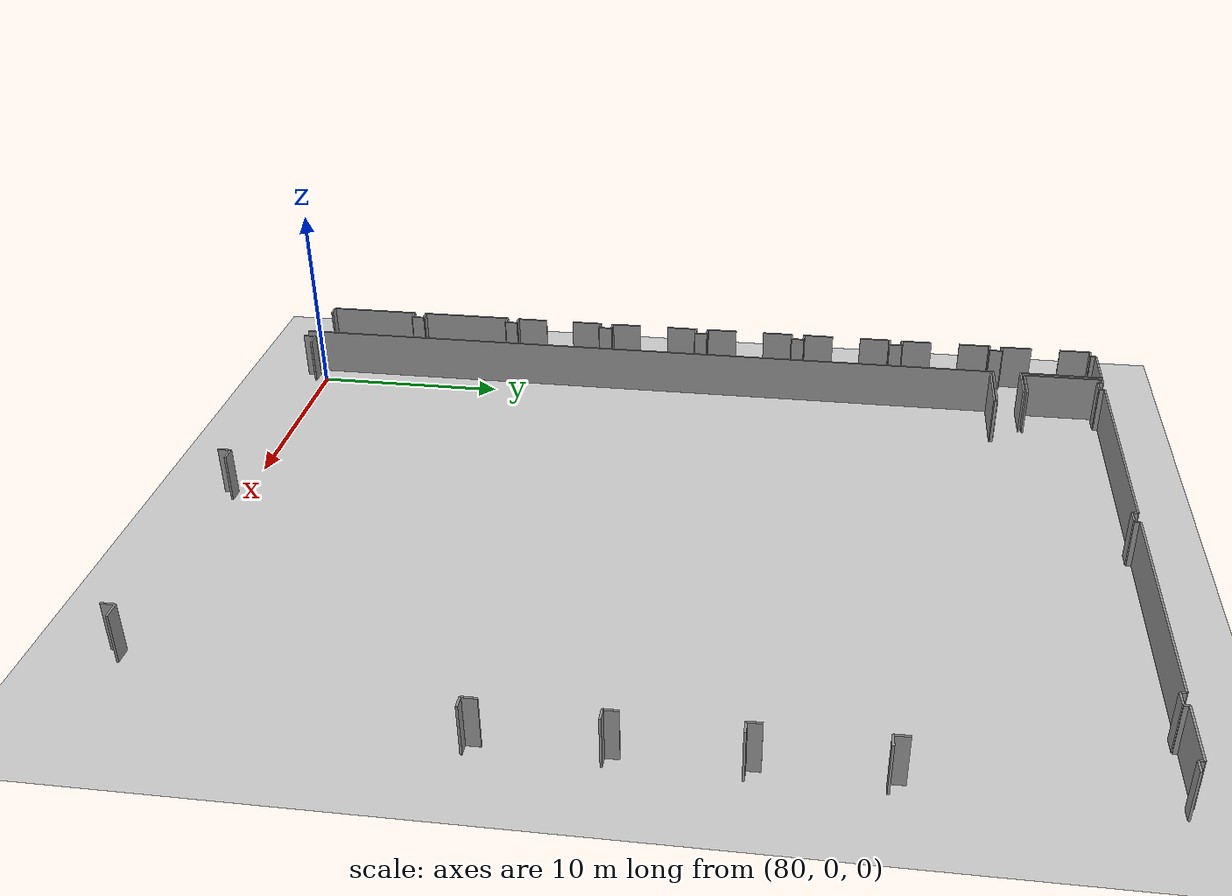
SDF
<sdf version="1.6">
 <world name="default">
  <model name="ground_plane">
   <static>1</static>
   <link name="link">
    <collision name="collision">
     <geometry><plane><normal>0 0 1</normal><size>100 100</size></plane></geometry>
     <surface><friction><ode><mu>100</mu><mu2>50</mu2></ode></friction></surface>
    </collision>
    <visual name="visual">
     <cast_shadows>0</cast_shadows>
     <geometry><plane><normal>0 0 1</normal><size>100 100</size></plane></geometry>
     <material>
      <script><uri>file://media/materials/scripts/gazebo.material</uri><name>Gazebo/Grey</name></script>
     </material>
    </visual>
   </link>
  </model>
  <model name="50015848">
   <static>1</static>
   <link name="Wall_897">
    <collision name="Wall_897_Collision">
     <geometry><box><size>0.610470094958 0.1 2.5</size></box></geometry>
     <pose>0.305235047479 0 1.25 0 0 0</pose>
    </collision>
    <visual name="Wall_897_Visual">
     <pose>0.305235047479 0 1.25 0 0 0</pose>
     <geometry><box><size>0.610470094958 0.1 2.5</size></box></geometry>
     <material>
      <script><uri>file://media/materials/scripts/gazebo.material</uri><name>Gazebo/Grey</name></script>
      <ambient>1 1 1 1</ambient>
     </material>
    </visual>
    <pose>208.205316875 -44.3907668301 0 0 0 3.14159265359</pose>
   </link>
   <link name="Wall_898">
    <collision name="Wall_898_Collision">
     <geometry><box><size>4.88376075966 0.1 2.5</size></box></geometry>
     <pose>2.44188037983 0 1.25 0 0 0</pose>
    </collision>
    <visual name="Wall_898_Visual">
     <pose>2.44188037983 0 1.25 0 0 0</pose>
     <geometry><box><size>4.88376075966 0.1 2.5</size></box></geometry>
     <material>
      <script><uri>file://media/materials/scripts/gazebo.material</uri><name>Gazebo/Grey</name></script>
      <ambient>1 1 1 1</ambient>
     </material>
    </visual>
    <pose>207.59484678 -44.3907668301 0 0 0 1.57079632679</pose>
   </link>
   <link name="Wall_899">
    <collision name="Wall_899_Collision">
     <geometry><box><size>0.55312751746 0.1 2.5</size></box></geometry>
     <pose>0.27656375873 0 1.25 0 0 0</pose>
    </collision>
    <visual name="Wall_899_Visual">
     <pose>0.27656375873 0 1.25 0 0 0</pose>
     <geometry><box><size>0.55312751746 0.1 2.5</size></box></geometry>
     <material>
      <script><uri>file://media/materials/scripts/gazebo.material</uri><name>Gazebo/Grey</name></script>
      <ambient>1 1 1 1</ambient>
     </material>
    </visual>
    <pose>207.59484678 -39.5070060704 0 0 0 0.0</pose>
   </link>
   <link name="Wall_900">
    <collision name="Wall_900_Collision">
     <geometry><box><size>0.686588560663 0.1 2.5</size></box></geometry>
     <pose>0.343294280332 0 1.25 0 0 0</pose>
    </collision>
    <visual name="Wall_900_Visual">
     <pose>0.343294280332 0 1.25 0 0 0</pose>
     <geometry><box><size>0.686588560663 0.1 2.5</size></box></geometry>
     <material>
      <script><uri>file://media/materials/scripts/gazebo.material</uri><name>Gazebo/Grey</name></script>
      <ambient>1 1 1 1</ambient>
     </material>
    </visual>
    <pose>208.147974297 -39.5070060704 0 0 0 1.57079632679</pose>
   </link>
   <link name="Wall_901">
    <collision name="Wall_901_Collision">
     <geometry><box><size>0.55312751746 0.1 2.5</size></box></geometry>
     <pose>0.27656375873 0 1.25 0 0 0</pose>
    </collision>
    <visual name="Wall_901_Visual">
     <pose>0.27656375873 0 1.25 0 0 0</pose>
     <geometry><box><size>0.55312751746 0.1 2.5</size></box></geometry>
     <material>
      <script><uri>file://media/materials/scripts/gazebo.material</uri><name>Gazebo/Grey</name></script>
      <ambient>1 1 1 1</ambient>
     </material>
    </visual>
    <pose>208.147974297 -38.8204175098 0 0 0 3.14159265359</pose>
   </link>
   <link name="Wall_902">
    <collision name="Wall_902_Collision">
     <geometry><box><size>4.94922264017 0.1 2.5</size></box></geometry>
     <pose>2.47461132008 0 1.25 0 0 0</pose>
    </collision>
    <visual name="Wall_902_Visual">
     <pose>2.47461132008 0 1.25 0 0 0</pose>
     <geometry><box><size>4.94922264017 0.1 2.5</size></box></geometry>
     <material>
      <script><uri>file://media/materials/scripts/gazebo.material</uri><name>Gazebo/Grey</name></script>
      <ambient>1 1 1 1</ambient>
     </material>
    </visual>
    <pose>207.59484678 -38.8204175098 0 0 0 1.57079632679</pose>
   </link>
   <link name="Wall_903">
    <collision name="Wall_903_Collision">
     <geometry><box><size>0.537903824319 0.1 2.5</size></box></geometry>
     <pose>0.268951912159 0 1.25 0 0 0</pose>
    </collision>
    <visual name="Wall_903_Visual">
     <pose>0.268951912159 0 1.25 0 0 0</pose>
     <geometry><box><size>0.537903824319 0.1 2.5</size></box></geometry>
     <material>
      <script><uri>file://media/materials/scripts/gazebo.material</uri><name>Gazebo/Grey</name></script>
      <ambient>1 1 1 1</ambient>
     </material>
    </visual>
    <pose>207.59484678 -33.8711948696 0 0 0 0.0</pose>
   </link>
   <link name="Wall_904">
    <collision name="Wall_904_Collision">
     <geometry><box><size>0.669081313551 0.1 2.5</size></box></geometry>
     <pose>0.334540656775 0 1.25 0 0 0</pose>
    </collision>
    <visual name="Wall_904_Visual">
     <pose>0.334540656775 0 1.25 0 0 0</pose>
     <geometry><box><size>0.669081313551 0.1 2.5</size></box></geometry>
     <material>
      <script><uri>file://media/materials/scripts/gazebo.material</uri><name>Gazebo/Grey</name></script>
      <ambient>1 1 1 1</ambient>
     </material>
    </visual>
    <pose>208.132750604 -33.8711948696 0 0 0 1.57079632679</pose>
   </link>
   <link name="Wall_905">
    <collision name="Wall_905_Collision">
     <geometry><box><size>0.515575741045 0.1 2.5</size></box></geometry>
     <pose>0.257787870522 0 1.25 0 0 0</pose>
    </collision>
    <visual name="Wall_905_Visual">
     <pose>0.257787870522 0 1.25 0 0 0</pose>
     <geometry><box><size>0.515575741045 0.1 2.5</size></box></geometry>
     <material>
      <script><uri>file://media/materials/scripts/gazebo.material</uri><name>Gazebo/Grey</name></script>
      <ambient>1 1 1 1</ambient>
     </material>
    </visual>
    <pose>208.132750604 -33.2021135561 0 0 0 3.14159265359</pose>
   </link>
   <link name="Wall_906">
    <collision name="Wall_906_Collision">
     <geometry><box><size>1.67841216881 0.1 2.5</size></box></geometry>
     <pose>0.839206084403 0 1.25 0 0 0</pose>
    </collision>
    <visual name="Wall_906_Visual">
     <pose>0.839206084403 0 1.25 0 0 0</pose>
     <geometry><box><size>1.67841216881 0.1 2.5</size></box></geometry>
     <material>
      <script><uri>file://media/materials/scripts/gazebo.material</uri><name>Gazebo/Grey</name></script>
      <ambient>1 1 1 1</ambient>
     </material>
    </visual>
    <pose>207.617174863 -33.2021135561 0 0 0 1.57079632679</pose>
   </link>
   <link name="Wall_907">
    <collision name="Wall_907_Collision">
     <geometry><box><size>1.66851676826 0.1 2.5</size></box></geometry>
     <pose>0.834258384132 0 1.25 0 0 0</pose>
    </collision>
    <visual name="Wall_907_Visual">
     <pose>0.834258384132 0 1.25 0 0 0</pose>
     <geometry><box><size>1.66851676826 0.1 2.5</size></box></geometry>
     <material>
      <script><uri>file://media/materials/scripts/gazebo.material</uri><name>Gazebo/Grey</name></script>
      <ambient>1 1 1 1</ambient>
     </material>
    </visual>
    <pose>207.617174863 -29.965302666 0 0 0 1.57079632679</pose>
   </link>
   <link name="Wall_908">
    <collision name="Wall_908_Collision">
     <geometry><box><size>0.515575741045 0.1 2.5</size></box></geometry>
     <pose>0.257787870522 0 1.25 0 0 0</pose>
    </collision>
    <visual name="Wall_908_Visual">
     <pose>0.257787870522 0 1.25 0 0 0</pose>
     <geometry><box><size>0.515575741045 0.1 2.5</size></box></geometry>
     <material>
      <script><uri>file://media/materials/scripts/gazebo.material</uri><name>Gazebo/Grey</name></script>
      <ambient>1 1 1 1</ambient>
     </material>
    </visual>
    <pose>207.617174863 -28.2967858978 0 0 0 0.0</pose>
   </link>
   <link name="Wall_909">
    <collision name="Wall_909_Collision">
     <geometry><box><size>0.710946469689 0.1 2.5</size></box></geometry>
     <pose>0.355473234844 0 1.25 0 0 0</pose>
    </collision>
    <visual name="Wall_909_Visual">
     <pose>0.355473234844 0 1.25 0 0 0</pose>
     <geometry><box><size>0.710946469689 0.1 2.5</size></box></geometry>
     <material>
      <script><uri>file://media/materials/scripts/gazebo.material</uri><name>Gazebo/Grey</name></script>
      <ambient>1 1 1 1</ambient>
     </material>
    </visual>
    <pose>208.132750604 -28.2967858978 0 0 0 1.57079632679</pose>
   </link>
   <link name="Wall_910">
    <collision name="Wall_910_Collision">
     <geometry><box><size>0.515575741045 0.1 2.5</size></box></geometry>
     <pose>0.257787870522 0 1.25 0 0 0</pose>
    </collision>
    <visual name="Wall_910_Visual">
     <pose>0.257787870522 0 1.25 0 0 0</pose>
     <geometry><box><size>0.515575741045 0.1 2.5</size></box></geometry>
     <material>
      <script><uri>file://media/materials/scripts/gazebo.material</uri><name>Gazebo/Grey</name></script>
      <ambient>1 1 1 1</ambient>
     </material>
    </visual>
    <pose>208.132750604 -27.5858394281 0 0 0 3.14159265359</pose>
   </link>
   <link name="Wall_911">
    <collision name="Wall_911_Collision">
     <geometry><box><size>1.63451718692 0.1 2.5</size></box></geometry>
     <pose>0.817258593458 0 1.25 0 0 0</pose>
    </collision>
    <visual name="Wall_911_Visual">
     <pose>0.817258593458 0 1.25 0 0 0</pose>
     <geometry><box><size>1.63451718692 0.1 2.5</size></box></geometry>
     <material>
      <script><uri>file://media/materials/scripts/gazebo.material</uri><name>Gazebo/Grey</name></script>
      <ambient>1 1 1 1</ambient>
     </material>
    </visual>
    <pose>207.617174863 -27.5858394281 0 0 0 1.57079632679</pose>
   </link>
   <link name="Wall_912">
    <collision name="Wall_912_Collision">
     <geometry><box><size>1.69744178523 0.1 2.5</size></box></geometry>
     <pose>0.848720892616 0 1.25 0 0 0</pose>
    </collision>
    <visual name="Wall_912_Visual">
     <pose>0.848720892616 0 1.25 0 0 0</pose>
     <geometry><box><size>1.69744178523 0.1 2.5</size></box></geometry>
     <material>
      <script><uri>file://media/materials/scripts/gazebo.material</uri><name>Gazebo/Grey</name></script>
      <ambient>1 1 1 1</ambient>
     </material>
    </visual>
    <pose>207.617174863 -24.3655208723 0 0 0 1.57079632679</pose>
   </link>
   <link name="Wall_913">
    <collision name="Wall_913_Collision">
     <geometry><box><size>0.542217204042 0.1 2.5</size></box></geometry>
     <pose>0.271108602021 0 1.25 0 0 0</pose>
    </collision>
    <visual name="Wall_913_Visual">
     <pose>0.271108602021 0 1.25 0 0 0</pose>
     <geometry><box><size>0.542217204042 0.1 2.5</size></box></geometry>
     <material>
      <script><uri>file://media/materials/scripts/gazebo.material</uri><name>Gazebo/Grey</name></script>
      <ambient>1 1 1 1</ambient>
     </material>
    </visual>
    <pose>207.617174863 -22.6680790871 0 0 0 0.0</pose>
   </link>
   <link name="Wall_914">
    <collision name="Wall_914_Collision">
     <geometry><box><size>0.667305216018 0.1 2.5</size></box></geometry>
     <pose>0.333652608009 0 1.25 0 0 0</pose>
    </collision>
    <visual name="Wall_914_Visual">
     <pose>0.333652608009 0 1.25 0 0 0</pose>
     <geometry><box><size>0.667305216018 0.1 2.5</size></box></geometry>
     <material>
      <script><uri>file://media/materials/scripts/gazebo.material</uri><name>Gazebo/Grey</name></script>
      <ambient>1 1 1 1</ambient>
     </material>
    </visual>
    <pose>208.159392067 -22.6680790871 0 0 0 1.57079632679</pose>
   </link>
   <link name="Wall_915">
    <collision name="Wall_915_Collision">
     <geometry><box><size>0.551097691708 0.1 2.5</size></box></geometry>
     <pose>0.275548845854 0 1.25 0 0 0</pose>
    </collision>
    <visual name="Wall_915_Visual">
     <pose>0.275548845854 0 1.25 0 0 0</pose>
     <geometry><box><size>0.551097691708 0.1 2.5</size></box></geometry>
     <material>
      <script><uri>file://media/materials/scripts/gazebo.material</uri><name>Gazebo/Grey</name></script>
      <ambient>1 1 1 1</ambient>
     </material>
    </visual>
    <pose>208.159392067 -22.0007738711 0 0 0 3.14159265359</pose>
   </link>
   <link name="Wall_916">
    <collision name="Wall_916_Collision">
     <geometry><box><size>1.66826304004 0.1 2.5</size></box></geometry>
     <pose>0.834131520022 0 1.25 0 0 0</pose>
    </collision>
    <visual name="Wall_916_Visual">
     <pose>0.834131520022 0 1.25 0 0 0</pose>
     <geometry><box><size>1.66826304004 0.1 2.5</size></box></geometry>
     <material>
      <script><uri>file://media/materials/scripts/gazebo.material</uri><name>Gazebo/Grey</name></script>
      <ambient>1 1 1 1</ambient>
     </material>
    </visual>
    <pose>207.608294375 -22.0007738711 0 0 0 1.57079632679</pose>
   </link>
   <link name="Wall_917">
    <collision name="Wall_917_Collision">
     <geometry><box><size>1.66521830142 0.1 2.5</size></box></geometry>
     <pose>0.832609150708 0 1.25 0 0 0</pose>
    </collision>
    <visual name="Wall_917_Visual">
     <pose>0.832609150708 0 1.25 0 0 0</pose>
     <geometry><box><size>1.66521830142 0.1 2.5</size></box></geometry>
     <material>
      <script><uri>file://media/materials/scripts/gazebo.material</uri><name>Gazebo/Grey</name></script>
      <ambient>1 1 1 1</ambient>
     </material>
    </visual>
    <pose>207.608294375 -18.7538138523 0 0 0 1.57079632679</pose>
   </link>
   <link name="Wall_918">
    <collision name="Wall_918_Collision">
     <geometry><box><size>0.548052953079 0.1 2.5</size></box></geometry>
     <pose>0.27402647654 0 1.25 0 0 0</pose>
    </collision>
    <visual name="Wall_918_Visual">
     <pose>0.27402647654 0 1.25 0 0 0</pose>
     <geometry><box><size>0.548052953079 0.1 2.5</size></box></geometry>
     <material>
      <script><uri>file://media/materials/scripts/gazebo.material</uri><name>Gazebo/Grey</name></script>
      <ambient>1 1 1 1</ambient>
     </material>
    </visual>
    <pose>207.608294375 -17.0885955509 0 0 0 0.0</pose>
   </link>
   <link name="Wall_919">
    <collision name="Wall_919_Collision">
     <geometry><box><size>0.681260268064 0.1 2.5</size></box></geometry>
     <pose>0.340630134032 0 1.25 0 0 0</pose>
    </collision>
    <visual name="Wall_919_Visual">
     <pose>0.340630134032 0 1.25 0 0 0</pose>
     <geometry><box><size>0.681260268064 0.1 2.5</size></box></geometry>
     <material>
      <script><uri>file://media/materials/scripts/gazebo.material</uri><name>Gazebo/Grey</name></script>
      <ambient>1 1 1 1</ambient>
     </material>
    </visual>
    <pose>208.156347329 -17.0885955509 0 0 0 1.57079632679</pose>
   </link>
   <link name="Wall_920">
    <collision name="Wall_920_Collision">
     <geometry><box><size>0.542470932261 0.1 2.5</size></box></geometry>
     <pose>0.27123546613 0 1.25 0 0 0</pose>
    </collision>
    <visual name="Wall_920_Visual">
     <pose>0.27123546613 0 1.25 0 0 0</pose>
     <geometry><box><size>0.542470932261 0.1 2.5</size></box></geometry>
     <material>
      <script><uri>file://media/materials/scripts/gazebo.material</uri><name>Gazebo/Grey</name></script>
      <ambient>1 1 1 1</ambient>
     </material>
    </visual>
    <pose>208.156347329 -16.4073352828 0 0 0 3.14159265359</pose>
   </link>
   <link name="Wall_921">
    <collision name="Wall_921_Collision">
     <geometry><box><size>1.65253189047 0.1 2.5</size></box></geometry>
     <pose>0.826265945233 0 1.25 0 0 0</pose>
    </collision>
    <visual name="Wall_921_Visual">
     <pose>0.826265945233 0 1.25 0 0 0</pose>
     <geometry><box><size>1.65253189047 0.1 2.5</size></box></geometry>
     <material>
      <script><uri>file://media/materials/scripts/gazebo.material</uri><name>Gazebo/Grey</name></script>
      <ambient>1 1 1 1</ambient>
     </material>
    </visual>
    <pose>207.613876396 -16.4073352828 0 0 0 1.57079632679</pose>
   </link>
   <link name="Wall_922">
    <collision name="Wall_922_Collision">
     <geometry><box><size>1.67765098415 0.1 2.5</size></box></geometry>
     <pose>0.838825492074 0 1.25 0 0 0</pose>
    </collision>
    <visual name="Wall_922_Visual">
     <pose>0.838825492074 0 1.25 0 0 0</pose>
     <geometry><box><size>1.67765098415 0.1 2.5</size></box></geometry>
     <material>
      <script><uri>file://media/materials/scripts/gazebo.material</uri><name>Gazebo/Grey</name></script>
      <ambient>1 1 1 1</ambient>
     </material>
    </visual>
    <pose>207.613876396 -13.1905689221 0 0 0 1.57079632679</pose>
   </link>
   <link name="Wall_923">
    <collision name="Wall_923_Collision">
     <geometry><box><size>0.542470932261 0.1 2.5</size></box></geometry>
     <pose>0.27123546613 0 1.25 0 0 0</pose>
    </collision>
    <visual name="Wall_923_Visual">
     <pose>0.27123546613 0 1.25 0 0 0</pose>
     <geometry><box><size>0.542470932261 0.1 2.5</size></box></geometry>
     <material>
      <script><uri>file://media/materials/scripts/gazebo.material</uri><name>Gazebo/Grey</name></script>
      <ambient>1 1 1 1</ambient>
     </material>
    </visual>
    <pose>207.613876396 -11.512917938 0 0 0 0.0</pose>
   </link>
   <link name="Wall_924">
    <collision name="Wall_924_Collision">
     <geometry><box><size>0.693692950796 0.1 2.5</size></box></geometry>
     <pose>0.346846475398 0 1.25 0 0 0</pose>
    </collision>
    <visual name="Wall_924_Visual">
     <pose>0.346846475398 0 1.25 0 0 0</pose>
     <geometry><box><size>0.693692950796 0.1 2.5</size></box></geometry>
     <material>
      <script><uri>file://media/materials/scripts/gazebo.material</uri><name>Gazebo/Grey</name></script>
      <ambient>1 1 1 1</ambient>
     </material>
    </visual>
    <pose>208.156347329 -11.512917938 0 0 0 1.57079632679</pose>
   </link>
   <link name="Wall_925">
    <collision name="Wall_925_Collision">
     <geometry><box><size>0.517351838578 0.1 2.5</size></box></geometry>
     <pose>0.258675919289 0 1.25 0 0 0</pose>
    </collision>
    <visual name="Wall_925_Visual">
     <pose>0.258675919289 0 1.25 0 0 0</pose>
     <geometry><box><size>0.517351838578 0.1 2.5</size></box></geometry>
     <material>
      <script><uri>file://media/materials/scripts/gazebo.material</uri><name>Gazebo/Grey</name></script>
      <ambient>1 1 1 1</ambient>
     </material>
    </visual>
    <pose>208.156347329 -10.8192249872 0 0 0 3.14159265359</pose>
   </link>
   <link name="Wall_926">
    <collision name="Wall_926_Collision">
     <geometry><box><size>1.67790471237 0.1 2.5</size></box></geometry>
     <pose>0.838952356184 0 1.25 0 0 0</pose>
    </collision>
    <visual name="Wall_926_Visual">
     <pose>0.838952356184 0 1.25 0 0 0</pose>
     <geometry><box><size>1.67790471237 0.1 2.5</size></box></geometry>
     <material>
      <script><uri>file://media/materials/scripts/gazebo.material</uri><name>Gazebo/Grey</name></script>
      <ambient>1 1 1 1</ambient>
     </material>
    </visual>
    <pose>207.63899549 -10.8192249872 0 0 0 1.57079632679</pose>
   </link>
   <link name="Wall_927">
    <collision name="Wall_927_Collision">
     <geometry><box><size>1.69744178523 0.1 2.5</size></box></geometry>
     <pose>0.848720892616 0 1.25 0 0 0</pose>
    </collision>
    <visual name="Wall_927_Visual">
     <pose>0.848720892616 0 1.25 0 0 0</pose>
     <geometry><box><size>1.69744178523 0.1 2.5</size></box></geometry>
     <material>
      <script><uri>file://media/materials/scripts/gazebo.material</uri><name>Gazebo/Grey</name></script>
      <ambient>1 1 1 1</ambient>
     </material>
    </visual>
    <pose>207.63899549 -7.58089172783 0 0 0 1.57079632679</pose>
   </link>
   <link name="Wall_928">
    <collision name="Wall_928_Collision">
     <geometry><box><size>0.505934068722 0.1 2.5</size></box></geometry>
     <pose>0.252967034361 0 1.25 0 0 0</pose>
    </collision>
    <visual name="Wall_928_Visual">
     <pose>0.252967034361 0 1.25 0 0 0</pose>
     <geometry><box><size>0.505934068722 0.1 2.5</size></box></geometry>
     <material>
      <script><uri>file://media/materials/scripts/gazebo.material</uri><name>Gazebo/Grey</name></script>
      <ambient>1 1 1 1</ambient>
     </material>
    </visual>
    <pose>207.63899549 -5.88344994259 0 0 0 0.0</pose>
   </link>
   <link name="Wall_929">
    <collision name="Wall_929_Collision">
     <geometry><box><size>0.681767724502 0.1 2.5</size></box></geometry>
     <pose>0.340883862251 0 1.25 0 0 0</pose>
    </collision>
    <visual name="Wall_929_Visual">
     <pose>0.340883862251 0 1.25 0 0 0</pose>
     <geometry><box><size>0.681767724502 0.1 2.5</size></box></geometry>
     <material>
      <script><uri>file://media/materials/scripts/gazebo.material</uri><name>Gazebo/Grey</name></script>
      <ambient>1 1 1 1</ambient>
     </material>
    </visual>
    <pose>208.144929559 -5.88344994259 0 0 0 1.57079632679</pose>
   </link>
   <link name="Wall_930">
    <collision name="Wall_930_Collision">
     <geometry><box><size>0.464322640803 0.1 2.5</size></box></geometry>
     <pose>0.232161320402 0 1.25 0 0 0</pose>
    </collision>
    <visual name="Wall_930_Visual">
     <pose>0.232161320402 0 1.25 0 0 0</pose>
     <geometry><box><size>0.464322640803 0.1 2.5</size></box></geometry>
     <material>
      <script><uri>file://media/materials/scripts/gazebo.material</uri><name>Gazebo/Grey</name></script>
      <ambient>1 1 1 1</ambient>
     </material>
    </visual>
    <pose>208.144929559 -5.20168221809 0 0 0 3.14159265359</pose>
   </link>
   <link name="Wall_931">
    <collision name="Wall_931_Collision">
     <geometry><box><size>1.66826304004 0.1 2.5</size></box></geometry>
     <pose>0.834131520022 0 1.25 0 0 0</pose>
    </collision>
    <visual name="Wall_931_Visual">
     <pose>0.834131520022 0 1.25 0 0 0</pose>
     <geometry><box><size>1.66826304004 0.1 2.5</size></box></geometry>
     <material>
      <script><uri>file://media/materials/scripts/gazebo.material</uri><name>Gazebo/Grey</name></script>
      <ambient>1 1 1 1</ambient>
     </material>
    </visual>
    <pose>207.680606918 -5.20168221809 0 0 0 1.57079632679</pose>
   </link>
   <link name="Wall_932">
    <collision name="Wall_932_Collision">
     <geometry><box><size>1.66521830142 0.1 2.5</size></box></geometry>
     <pose>0.832609150708 0 1.25 0 0 0</pose>
    </collision>
    <visual name="Wall_932_Visual">
     <pose>0.832609150708 0 1.25 0 0 0</pose>
     <geometry><box><size>1.66521830142 0.1 2.5</size></box></geometry>
     <material>
      <script><uri>file://media/materials/scripts/gazebo.material</uri><name>Gazebo/Grey</name></script>
      <ambient>1 1 1 1</ambient>
     </material>
    </visual>
    <pose>207.680606918 -1.96360268698 0 0 0 1.57079632679</pose>
   </link>
   <link name="Wall_933">
    <collision name="Wall_933_Collision">
     <geometry><box><size>0.463053999708 0.1 2.5</size></box></geometry>
     <pose>0.231526999854 0 1.25 0 0 0</pose>
    </collision>
    <visual name="Wall_933_Visual">
     <pose>0.231526999854 0 1.25 0 0 0</pose>
     <geometry><box><size>0.463053999708 0.1 2.5</size></box></geometry>
     <material>
      <script><uri>file://media/materials/scripts/gazebo.material</uri><name>Gazebo/Grey</name></script>
      <ambient>1 1 1 1</ambient>
     </material>
    </visual>
    <pose>207.680606918 -0.298384385565 0 0 0 0.0</pose>
   </link>
   <link name="Wall_934">
    <collision name="Wall_934_Collision">
     <geometry><box><size>0.264892260655 0.1 2.5</size></box></geometry>
     <pose>0.132446130328 0 1.25 0 0 0</pose>
    </collision>
    <visual name="Wall_934_Visual">
     <pose>0.132446130328 0 1.25 0 0 0</pose>
     <geometry><box><size>0.264892260655 0.1 2.5</size></box></geometry>
     <material>
      <script><uri>file://media/materials/scripts/gazebo.material</uri><name>Gazebo/Grey</name></script>
      <ambient>1 1 1 1</ambient>
     </material>
    </visual>
    <pose>208.143660918 -0.298384385565 0 0 0 1.57079632679</pose>
   </link>
   <link name="Wall_935">
    <collision name="Wall_935_Collision">
     <geometry><box><size>2.54768504716 0.1 2.5</size></box></geometry>
     <pose>1.27384252358 0 1.25 0 0 0</pose>
    </collision>
    <visual name="Wall_935_Visual">
     <pose>1.27384252358 0 1.25 0 0 0</pose>
     <geometry><box><size>2.54768504716 0.1 2.5</size></box></geometry>
     <material>
      <script><uri>file://media/materials/scripts/gazebo.material</uri><name>Gazebo/Grey</name></script>
      <ambient>1 1 1 1</ambient>
     </material>
    </visual>
    <pose>208.143660918 -0.0334921249104 0 0 0 0.0</pose>
   </link>
   <link name="Wall_936">
    <collision name="Wall_936_Collision">
     <geometry><box><size>4.34940913041 0.1 2.5</size></box></geometry>
     <pose>2.1747045652 0 1.25 0 0 0</pose>
    </collision>
    <visual name="Wall_936_Visual">
     <pose>2.1747045652 0 1.25 0 0 0</pose>
     <geometry><box><size>4.34940913041 0.1 2.5</size></box></geometry>
     <material>
      <script><uri>file://media/materials/scripts/gazebo.material</uri><name>Gazebo/Grey</name></script>
      <ambient>1 1 1 1</ambient>
     </material>
    </visual>
    <pose>210.691345965 -0.0334921249104 0 0 0 -1.57079632679</pose>
   </link>
   <link name="Wall_937">
    <collision name="Wall_937_Collision">
     <geometry><box><size>2.18206268356 0.1 2.5</size></box></geometry>
     <pose>1.09103134178 0 1.25 0 0 0</pose>
    </collision>
    <visual name="Wall_937_Visual">
     <pose>1.09103134178 0 1.25 0 0 0</pose>
     <geometry><box><size>2.18206268356 0.1 2.5</size></box></geometry>
     <material>
      <script><uri>file://media/materials/scripts/gazebo.material</uri><name>Gazebo/Grey</name></script>
      <ambient>1 1 1 1</ambient>
     </material>
    </visual>
    <pose>210.691345965 -4.38290125532 0 0 0 0.0</pose>
   </link>
   <link name="Wall_938">
    <collision name="Wall_938_Collision">
     <geometry><box><size>3.24264663905 0.1 2.5</size></box></geometry>
     <pose>1.62132331953 0 1.25 0 0 0</pose>
    </collision>
    <visual name="Wall_938_Visual">
     <pose>1.62132331953 0 1.25 0 0 0</pose>
     <geometry><box><size>3.24264663905 0.1 2.5</size></box></geometry>
     <material>
      <script><uri>file://media/materials/scripts/gazebo.material</uri><name>Gazebo/Grey</name></script>
      <ambient>1 1 1 1</ambient>
     </material>
    </visual>
    <pose>213.972051837 -5.86847997767 0 0 0 3.14159265359</pose>
   </link>
   <link name="Wall_939">
    <collision name="Wall_939_Collision">
     <geometry><box><size>39.1114458345 0.1 2.5</size></box></geometry>
     <pose>19.5557229173 0 1.25 0 0 0</pose>
    </collision>
    <visual name="Wall_939_Visual">
     <pose>19.5557229173 0 1.25 0 0 0</pose>
     <geometry><box><size>39.1114458345 0.1 2.5</size></box></geometry>
     <material>
      <script><uri>file://media/materials/scripts/gazebo.material</uri><name>Gazebo/Grey</name></script>
      <ambient>1 1 1 1</ambient>
     </material>
    </visual>
    <pose>210.729405198 -5.86847997767 0 0 0 -1.57112069249</pose>
   </link>
   <link name="Wall_955">
    <collision name="Wall_955_Collision">
     <geometry><box><size>0.83476584057 0.1 2.5</size></box></geometry>
     <pose>0.417382920285 0 1.25 0 0 0</pose>
    </collision>
    <visual name="Wall_955_Visual">
     <pose>0.417382920285 0 1.25 0 0 0</pose>
     <geometry><box><size>0.83476584057 0.1 2.5</size></box></geometry>
     <material>
      <script><uri>file://media/materials/scripts/gazebo.material</uri><name>Gazebo/Grey</name></script>
      <ambient>1 1 1 1</ambient>
     </material>
    </visual>
    <pose>237.710864008 -44.3169319184 0 0 0 3.14159265359</pose>
   </link>
   <link name="Wall_956">
    <collision name="Wall_956_Collision">
     <geometry><box><size>0.684051278473 0.1 2.5</size></box></geometry>
     <pose>0.342025639237 0 1.25 0 0 0</pose>
    </collision>
    <visual name="Wall_956_Visual">
     <pose>0.342025639237 0 1.25 0 0 0</pose>
     <geometry><box><size>0.684051278473 0.1 2.5</size></box></geometry>
     <material>
      <script><uri>file://media/materials/scripts/gazebo.material</uri><name>Gazebo/Grey</name></script>
      <ambient>1 1 1 1</ambient>
     </material>
    </visual>
    <pose>236.876098167 -44.3169319184 0 0 0 -1.57079632679</pose>
   </link>
   <link name="Wall_959">
    <collision name="Wall_959_Collision">
     <geometry><box><size>0.761184657055 0.1 2.5</size></box></geometry>
     <pose>0.380592328527 0 1.25 0 0 0</pose>
    </collision>
    <visual name="Wall_959_Visual">
     <pose>0.380592328527 0 1.25 0 0 0</pose>
     <geometry><box><size>0.761184657055 0.1 2.5</size></box></geometry>
     <material>
      <script><uri>file://media/materials/scripts/gazebo.material</uri><name>Gazebo/Grey</name></script>
      <ambient>1 1 1 1</ambient>
     </material>
    </visual>
    <pose>224.849380586 -44.3169319184 0 0 0 3.14159265359</pose>
   </link>
   <link name="Wall_960">
    <collision name="Wall_960_Collision">
     <geometry><box><size>0.667305216018 0.1 2.5</size></box></geometry>
     <pose>0.333652608009 0 1.25 0 0 0</pose>
    </collision>
    <visual name="Wall_960_Visual">
     <pose>0.333652608009 0 1.25 0 0 0</pose>
     <geometry><box><size>0.667305216018 0.1 2.5</size></box></geometry>
     <material>
      <script><uri>file://media/materials/scripts/gazebo.material</uri><name>Gazebo/Grey</name></script>
      <ambient>1 1 1 1</ambient>
     </material>
    </visual>
    <pose>224.088195929 -44.3169319184 0 0 0 -1.57079632679</pose>
   </link>
   <link name="Wall_963">
    <collision name="Wall_963_Collision">
     <geometry><box><size>0.751035528294 0.1 2.5</size></box></geometry>
     <pose>0.375517764147 0 1.25 0 0 0</pose>
    </collision>
    <visual name="Wall_963_Visual">
     <pose>0.375517764147 0 1.25 0 0 0</pose>
     <geometry><box><size>0.751035528294 0.1 2.5</size></box></geometry>
     <material>
      <script><uri>file://media/materials/scripts/gazebo.material</uri><name>Gazebo/Grey</name></script>
      <ambient>1 1 1 1</ambient>
     </material>
    </visual>
    <pose>212.084313887 -44.3504240433 0 0 0 3.14159265359</pose>
   </link>
   <link name="Wall_964">
    <collision name="Wall_964_Collision">
     <geometry><box><size>0.667305216018 0.1 2.5</size></box></geometry>
     <pose>0.333652608009 0 1.25 0 0 0</pose>
    </collision>
    <visual name="Wall_964_Visual">
     <pose>0.333652608009 0 1.25 0 0 0</pose>
     <geometry><box><size>0.667305216018 0.1 2.5</size></box></geometry>
     <material>
      <script><uri>file://media/materials/scripts/gazebo.material</uri><name>Gazebo/Grey</name></script>
      <ambient>1 1 1 1</ambient>
     </material>
    </visual>
    <pose>211.333278359 -44.3504240433 0 0 0 -1.57079632679</pose>
   </link>
   <link name="Wall_967">
    <collision name="Wall_967_Collision">
     <geometry><box><size>3.14115535145 0.1 2.5</size></box></geometry>
     <pose>1.57057767572 0 1.25 0 0 0</pose>
    </collision>
    <visual name="Wall_967_Visual">
     <pose>1.57057767572 0 1.25 0 0 0</pose>
     <geometry><box><size>3.14115535145 0.1 2.5</size></box></geometry>
     <material>
      <script><uri>file://media/materials/scripts/gazebo.material</uri><name>Gazebo/Grey</name></script>
      <ambient>1 1 1 1</ambient>
     </material>
    </visual>
    <pose>210.957760595 -6.01285133429 0 0 0 0.0</pose>
   </link>
   <link name="Wall_968">
    <collision name="Wall_968_Collision">
     <geometry><box><size>0.148431008126 0.1 2.5</size></box></geometry>
     <pose>0.0742155040628 0 1.25 0 0 0</pose>
    </collision>
    <visual name="Wall_968_Visual">
     <pose>0.0742155040628 0 1.25 0 0 0</pose>
     <geometry><box><size>0.148431008126 0.1 2.5</size></box></geometry>
     <material>
      <script><uri>file://media/materials/scripts/gazebo.material</uri><name>Gazebo/Grey</name></script>
      <ambient>1 1 1 1</ambient>
     </material>
    </visual>
    <pose>214.098915946 -6.01285133429 0 0 0 1.57079632679</pose>
   </link>
   <link name="Wall_969">
    <collision name="Wall_969_Collision">
     <geometry><box><size>1.97400554396 0.1 2.5</size></box></geometry>
     <pose>0.987002771981 0 1.25 0 0 0</pose>
    </collision>
    <visual name="Wall_969_Visual">
     <pose>0.987002771981 0 1.25 0 0 0</pose>
     <geometry><box><size>1.97400554396 0.1 2.5</size></box></geometry>
     <material>
      <script><uri>file://media/materials/scripts/gazebo.material</uri><name>Gazebo/Grey</name></script>
      <ambient>1 1 1 1</ambient>
     </material>
    </visual>
    <pose>212.903856035 -4.18803798311 0 0 0 3.14159265359</pose>
   </link>
   <link name="Wall_970">
    <collision name="Wall_970_Collision">
     <geometry><box><size>4.1464265552 0.1 2.5</size></box></geometry>
     <pose>2.0732132776 0 1.25 0 0 0</pose>
    </collision>
    <visual name="Wall_970_Visual">
     <pose>2.0732132776 0 1.25 0 0 0</pose>
     <geometry><box><size>4.1464265552 0.1 2.5</size></box></geometry>
     <material>
      <script><uri>file://media/materials/scripts/gazebo.material</uri><name>Gazebo/Grey</name></script>
      <ambient>1 1 1 1</ambient>
     </material>
    </visual>
    <pose>210.929850491 -4.18803798311 0 0 0 1.57079632679</pose>
   </link>
   <link name="Wall_971">
    <collision name="Wall_971_Collision">
     <geometry><box><size>0.372980481957 0.1 2.5</size></box></geometry>
     <pose>0.186490240978 0 1.25 0 0 0</pose>
    </collision>
    <visual name="Wall_971_Visual">
     <pose>0.186490240978 0 1.25 0 0 0</pose>
     <geometry><box><size>0.372980481957 0.1 2.5</size></box></geometry>
     <material>
      <script><uri>file://media/materials/scripts/gazebo.material</uri><name>Gazebo/Grey</name></script>
      <ambient>1 1 1 1</ambient>
     </material>
    </visual>
    <pose>210.929850491 -0.041611427919 0 0 0 0.0</pose>
   </link>
   <link name="Wall_972">
    <collision name="Wall_972_Collision">
     <geometry><box><size>0.285190518176 0.1 2.5</size></box></geometry>
     <pose>0.142595259088 0 1.25 0 0 0</pose>
    </collision>
    <visual name="Wall_972_Visual">
     <pose>0.142595259088 0 1.25 0 0 0</pose>
     <geometry><box><size>0.285190518176 0.1 2.5</size></box></geometry>
     <material>
      <script><uri>file://media/materials/scripts/gazebo.material</uri><name>Gazebo/Grey</name></script>
      <ambient>1 1 1 1</ambient>
     </material>
    </visual>
    <pose>211.302830973 -0.041611427919 0 0 0 -1.57079632679</pose>
   </link>
   <link name="Wall_973">
    <collision name="Wall_973_Collision">
     <geometry><box><size>0.778945632386 0.1 2.5</size></box></geometry>
     <pose>0.389472816193 0 1.25 0 0 0</pose>
    </collision>
    <visual name="Wall_973_Visual">
     <pose>0.389472816193 0 1.25 0 0 0</pose>
     <geometry><box><size>0.778945632386 0.1 2.5</size></box></geometry>
     <material>
      <script><uri>file://media/materials/scripts/gazebo.material</uri><name>Gazebo/Grey</name></script>
      <ambient>1 1 1 1</ambient>
     </material>
    </visual>
    <pose>211.302830973 -0.326801946095 0 0 0 0.0</pose>
   </link>
   <link name="Wall_974">
    <collision name="Wall_974_Collision">
     <geometry><box><size>0.285190518176 0.1 2.5</size></box></geometry>
     <pose>0.142595259088 0 1.25 0 0 0</pose>
    </collision>
    <visual name="Wall_974_Visual">
     <pose>0.142595259088 0 1.25 0 0 0</pose>
     <geometry><box><size>0.285190518176 0.1 2.5</size></box></geometry>
     <material>
      <script><uri>file://media/materials/scripts/gazebo.material</uri><name>Gazebo/Grey</name></script>
      <ambient>1 1 1 1</ambient>
     </material>
    </visual>
    <pose>212.081776605 -0.326801946095 0 0 0 1.57079632679</pose>
   </link>
   <link name="Wall_975">
    <collision name="Wall_975_Collision">
     <geometry><box><size>12.0114938883 0.1 2.5</size></box></geometry>
     <pose>6.00574694416 0 1.25 0 0 0</pose>
    </collision>
    <visual name="Wall_975_Visual">
     <pose>6.00574694416 0 1.25 0 0 0</pose>
     <geometry><box><size>12.0114938883 0.1 2.5</size></box></geometry>
     <material>
      <script><uri>file://media/materials/scripts/gazebo.material</uri><name>Gazebo/Grey</name></script>
      <ambient>1 1 1 1</ambient>
     </material>
    </visual>
    <pose>212.081776605 -0.041611427919 0 0 0 0.0</pose>
   </link>
   <link name="Wall_976">
    <collision name="Wall_976_Collision">
     <geometry><box><size>0.281892051329 0.1 2.5</size></box></geometry>
     <pose>0.140946025665 0 1.25 0 0 0</pose>
    </collision>
    <visual name="Wall_976_Visual">
     <pose>0.140946025665 0 1.25 0 0 0</pose>
     <geometry><box><size>0.281892051329 0.1 2.5</size></box></geometry>
     <material>
      <script><uri>file://media/materials/scripts/gazebo.material</uri><name>Gazebo/Grey</name></script>
      <ambient>1 1 1 1</ambient>
     </material>
    </visual>
    <pose>224.093270493 -0.041611427919 0 0 0 -1.57079632679</pose>
   </link>
   <link name="Wall_977">
    <collision name="Wall_977_Collision">
     <geometry><box><size>0.771333785815 0.1 2.5</size></box></geometry>
     <pose>0.385666892908 0 1.25 0 0 0</pose>
    </collision>
    <visual name="Wall_977_Visual">
     <pose>0.385666892908 0 1.25 0 0 0</pose>
     <geometry><box><size>0.771333785815 0.1 2.5</size></box></geometry>
     <material>
      <script><uri>file://media/materials/scripts/gazebo.material</uri><name>Gazebo/Grey</name></script>
      <ambient>1 1 1 1</ambient>
     </material>
    </visual>
    <pose>224.093270493 -0.323503479248 0 0 0 0.0</pose>
   </link>
   <link name="Wall_978">
    <collision name="Wall_978_Collision">
     <geometry><box><size>0.282145779548 0.1 2.5</size></box></geometry>
     <pose>0.141072889774 0 1.25 0 0 0</pose>
    </collision>
    <visual name="Wall_978_Visual">
     <pose>0.141072889774 0 1.25 0 0 0</pose>
     <geometry><box><size>0.282145779548 0.1 2.5</size></box></geometry>
     <material>
      <script><uri>file://media/materials/scripts/gazebo.material</uri><name>Gazebo/Grey</name></script>
      <ambient>1 1 1 1</ambient>
     </material>
    </visual>
    <pose>224.864604279 -0.323503479248 0 0 0 1.57079632679</pose>
   </link>
   <link name="Wall_979">
    <collision name="Wall_979_Collision">
     <geometry><box><size>12.0191057349 0.1 2.5</size></box></geometry>
     <pose>6.00955286745 0 1.25 0 0 0</pose>
    </collision>
    <visual name="Wall_979_Visual">
     <pose>6.00955286745 0 1.25 0 0 0</pose>
     <geometry><box><size>12.0191057349 0.1 2.5</size></box></geometry>
     <material>
      <script><uri>file://media/materials/scripts/gazebo.material</uri><name>Gazebo/Grey</name></script>
      <ambient>1 1 1 1</ambient>
     </material>
    </visual>
    <pose>224.864604279 -0.0413576997 0 0 0 0.0</pose>
   </link>
   <link name="Wall_980">
    <collision name="Wall_980_Collision">
     <geometry><box><size>0.265399717093 0.1 2.5</size></box></geometry>
     <pose>0.132699858547 0 1.25 0 0 0</pose>
    </collision>
    <visual name="Wall_980_Visual">
     <pose>0.132699858547 0 1.25 0 0 0</pose>
     <geometry><box><size>0.265399717093 0.1 2.5</size></box></geometry>
     <material>
      <script><uri>file://media/materials/scripts/gazebo.material</uri><name>Gazebo/Grey</name></script>
      <ambient>1 1 1 1</ambient>
     </material>
    </visual>
    <pose>236.883710014 -0.0413576997 0 0 0 -1.57079632679</pose>
   </link>
   <link name="Wall_981">
    <collision name="Wall_981_Collision">
     <geometry><box><size>0.771333785815 0.1 2.5</size></box></geometry>
     <pose>0.385666892908 0 1.25 0 0 0</pose>
    </collision>
    <visual name="Wall_981_Visual">
     <pose>0.385666892908 0 1.25 0 0 0</pose>
     <geometry><box><size>0.771333785815 0.1 2.5</size></box></geometry>
     <material>
      <script><uri>file://media/materials/scripts/gazebo.material</uri><name>Gazebo/Grey</name></script>
      <ambient>1 1 1 1</ambient>
     </material>
    </visual>
    <pose>236.883710014 -0.306757416793 0 0 0 0.0</pose>
   </link>
   <link name="Wall_982">
    <collision name="Wall_982_Collision">
     <geometry><box><size>0.248653654638 0.1 2.5</size></box></geometry>
     <pose>0.124326827319 0 1.25 0 0 0</pose>
    </collision>
    <visual name="Wall_982_Visual">
     <pose>0.124326827319 0 1.25 0 0 0</pose>
     <geometry><box><size>0.248653654638 0.1 2.5</size></box></geometry>
     <material>
      <script><uri>file://media/materials/scripts/gazebo.material</uri><name>Gazebo/Grey</name></script>
      <ambient>1 1 1 1</ambient>
     </material>
    </visual>
    <pose>237.6550438 -0.306757416793 0 0 0 1.57079632679</pose>
   </link>
   <link name="Wall_983">
    <collision name="Wall_983_Collision">
     <geometry><box><size>3.09294698983 0.1 2.5</size></box></geometry>
     <pose>1.54647349492 0 1.25 0 0 0</pose>
    </collision>
    <visual name="Wall_983_Visual">
     <pose>1.54647349492 0 1.25 0 0 0</pose>
     <geometry><box><size>3.09294698983 0.1 2.5</size></box></geometry>
     <material>
      <script><uri>file://media/materials/scripts/gazebo.material</uri><name>Gazebo/Grey</name></script>
      <ambient>1 1 1 1</ambient>
     </material>
    </visual>
    <pose>237.6550438 -0.0581037621552 0 0 0 0.0</pose>
   </link>
   <link name="Wall_984">
    <collision name="Wall_984_Collision">
     <geometry><box><size>0.240534351629 0.1 2.5</size></box></geometry>
     <pose>0.120267175815 0 1.25 0 0 0</pose>
    </collision>
    <visual name="Wall_984_Visual">
     <pose>0.120267175815 0 1.25 0 0 0</pose>
     <geometry><box><size>0.240534351629 0.1 2.5</size></box></geometry>
     <material>
      <script><uri>file://media/materials/scripts/gazebo.material</uri><name>Gazebo/Grey</name></script>
      <ambient>1 1 1 1</ambient>
     </material>
    </visual>
    <pose>240.74799079 -0.0581037621552 0 0 0 -1.57079632679</pose>
   </link>
   <link name="Wall_985">
    <collision name="Wall_985_Collision">
     <geometry><box><size>0.606410443454 0.1 2.5</size></box></geometry>
     <pose>0.303205221727 0 1.25 0 0 0</pose>
    </collision>
    <visual name="Wall_985_Visual">
     <pose>0.303205221727 0 1.25 0 0 0</pose>
     <geometry><box><size>0.606410443454 0.1 2.5</size></box></geometry>
     <material>
      <script><uri>file://media/materials/scripts/gazebo.material</uri><name>Gazebo/Grey</name></script>
      <ambient>1 1 1 1</ambient>
     </material>
    </visual>
    <pose>240.74799079 -0.298638113784 0 0 0 0.0</pose>
   </link>
   <link name="Wall_992">
    <collision name="Wall_992_Collision">
     <geometry><box><size>0.691155668606 0.1 2.5</size></box></geometry>
     <pose>0.345577834303 0 1.25 0 0 0</pose>
    </collision>
    <visual name="Wall_992_Visual">
     <pose>0.345577834303 0 1.25 0 0 0</pose>
     <geometry><box><size>0.691155668606 0.1 2.5</size></box></geometry>
     <material>
      <script><uri>file://media/materials/scripts/gazebo.material</uri><name>Gazebo/Grey</name></script>
      <ambient>1 1 1 1</ambient>
     </material>
    </visual>
    <pose>240.788587305 -10.7915686113 0 0 0 -1.57079632679</pose>
   </link>
   <link name="Wall_993">
    <collision name="Wall_993_Collision">
     <geometry><box><size>0.614022290024 0.1 2.5</size></box></geometry>
     <pose>0.307011145012 0 1.25 0 0 0</pose>
    </collision>
    <visual name="Wall_993_Visual">
     <pose>0.307011145012 0 1.25 0 0 0</pose>
     <geometry><box><size>0.614022290024 0.1 2.5</size></box></geometry>
     <material>
      <script><uri>file://media/materials/scripts/gazebo.material</uri><name>Gazebo/Grey</name></script>
      <ambient>1 1 1 1</ambient>
     </material>
    </visual>
    <pose>240.788587305 -11.4827242799 0 0 0 0.0</pose>
   </link>
   <link name="Wall_996">
    <collision name="Wall_996_Collision">
     <geometry><box><size>0.65385762041 0.1 2.5</size></box></geometry>
     <pose>0.326928810205 0 1.25 0 0 0</pose>
    </collision>
    <visual name="Wall_996_Visual">
     <pose>0.326928810205 0 1.25 0 0 0</pose>
     <geometry><box><size>0.65385762041 0.1 2.5</size></box></geometry>
     <material>
      <script><uri>file://media/materials/scripts/gazebo.material</uri><name>Gazebo/Grey</name></script>
      <ambient>1 1 1 1</ambient>
     </material>
    </visual>
    <pose>240.778438176 -16.4012458056 0 0 0 -1.57079632679</pose>
   </link>
   <link name="Wall_997">
    <collision name="Wall_997_Collision">
     <geometry><box><size>0.614022290024 0.1 2.5</size></box></geometry>
     <pose>0.307011145012 0 1.25 0 0 0</pose>
    </collision>
    <visual name="Wall_997_Visual">
     <pose>0.307011145012 0 1.25 0 0 0</pose>
     <geometry><box><size>0.614022290024 0.1 2.5</size></box></geometry>
     <material>
      <script><uri>file://media/materials/scripts/gazebo.material</uri><name>Gazebo/Grey</name></script>
      <ambient>1 1 1 1</ambient>
     </material>
    </visual>
    <pose>240.778438176 -17.055103426 0 0 0 0.0</pose>
   </link>
   <link name="Wall_1000">
    <collision name="Wall_1000_Collision">
     <geometry><box><size>0.66679775958 0.1 2.5</size></box></geometry>
     <pose>0.33339887979 0 1.25 0 0 0</pose>
    </collision>
    <visual name="Wall_1000_Visual">
     <pose>0.33339887979 0 1.25 0 0 0</pose>
     <geometry><box><size>0.66679775958 0.1 2.5</size></box></geometry>
     <material>
      <script><uri>file://media/materials/scripts/gazebo.material</uri><name>Gazebo/Grey</name></script>
      <ambient>1 1 1 1</ambient>
     </material>
    </visual>
    <pose>240.788587305 -21.9718488541 0 0 0 -1.57079632679</pose>
   </link>
   <link name="Wall_1001">
    <collision name="Wall_1001_Collision">
     <geometry><box><size>0.581037621552 0.1 2.5</size></box></geometry>
     <pose>0.290518810776 0 1.25 0 0 0</pose>
    </collision>
    <visual name="Wall_1001_Visual">
     <pose>0.290518810776 0 1.25 0 0 0</pose>
     <geometry><box><size>0.581037621552 0.1 2.5</size></box></geometry>
     <material>
      <script><uri>file://media/materials/scripts/gazebo.material</uri><name>Gazebo/Grey</name></script>
      <ambient>1 1 1 1</ambient>
     </material>
    </visual>
    <pose>240.788587305 -22.6386466137 0 0 0 0.0</pose>
   </link>
   <link name="Wall_1004">
    <collision name="Wall_1004_Collision">
     <geometry><box><size>0.700797340928 0.1 2.5</size></box></geometry>
     <pose>0.350398670464 0 1.25 0 0 0</pose>
    </collision>
    <visual name="Wall_1004_Visual">
     <pose>0.350398670464 0 1.25 0 0 0</pose>
     <geometry><box><size>0.700797340928 0.1 2.5</size></box></geometry>
     <material>
      <script><uri>file://media/materials/scripts/gazebo.material</uri><name>Gazebo/Grey</name></script>
      <ambient>1 1 1 1</ambient>
     </material>
    </visual>
    <pose>240.786050023 -27.5670635399 0 0 0 -1.57079632679</pose>
   </link>
   <link name="Wall_1005">
    <collision name="Wall_1005_Collision">
     <geometry><box><size>0.581037621552 0.1 2.5</size></box></geometry>
     <pose>0.290518810776 0 1.25 0 0 0</pose>
    </collision>
    <visual name="Wall_1005_Visual">
     <pose>0.290518810776 0 1.25 0 0 0</pose>
     <geometry><box><size>0.581037621552 0.1 2.5</size></box></geometry>
     <material>
      <script><uri>file://media/materials/scripts/gazebo.material</uri><name>Gazebo/Grey</name></script>
      <ambient>1 1 1 1</ambient>
     </material>
    </visual>
    <pose>240.786050023 -28.2678608808 0 0 0 0.0</pose>
   </link>
   <pose>-131.8 43.7717730528 0 0 0 0</pose>
  </model>
 </world>
</sdf>
